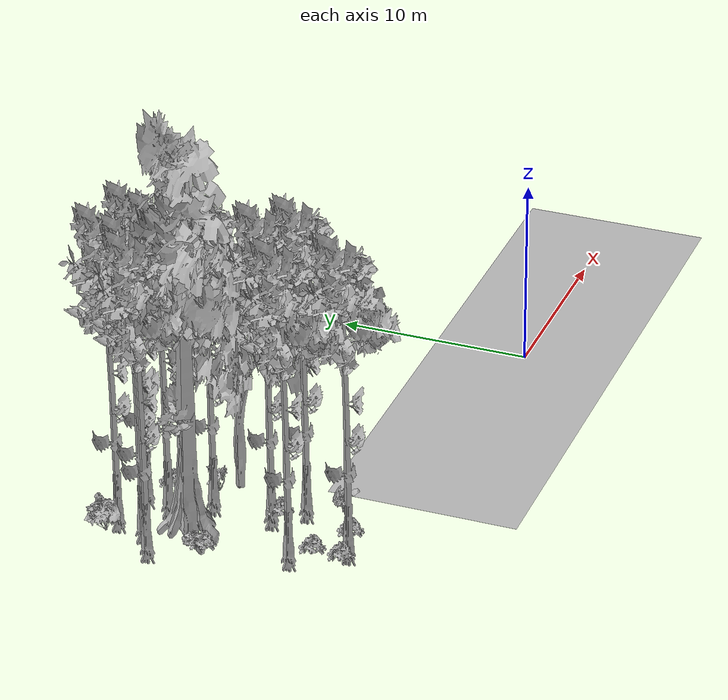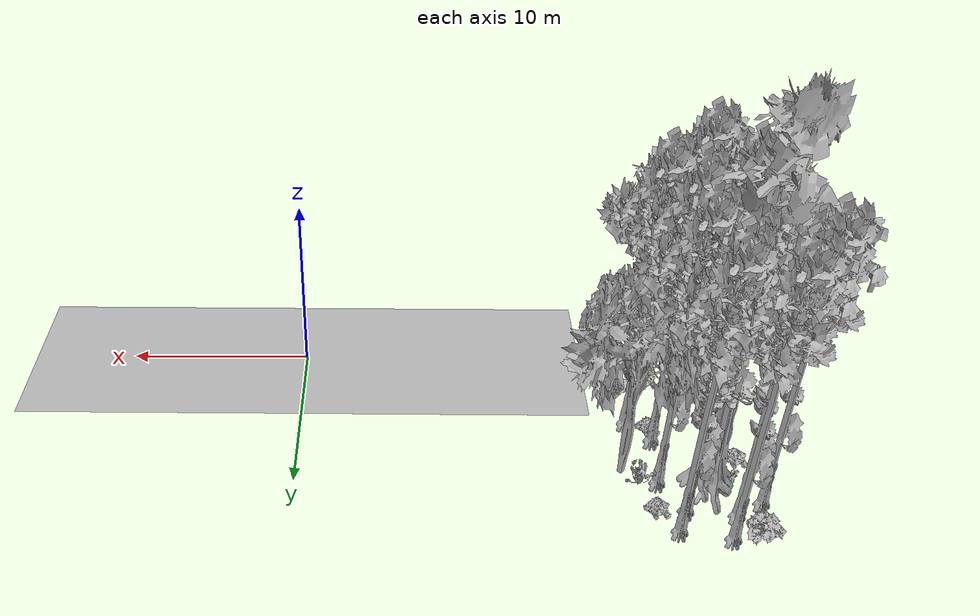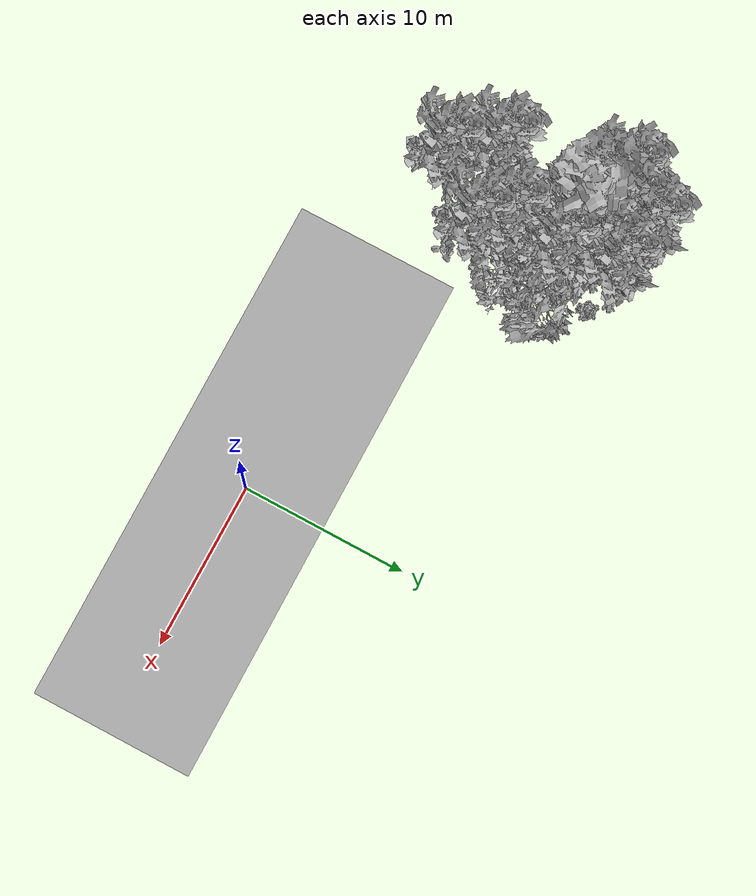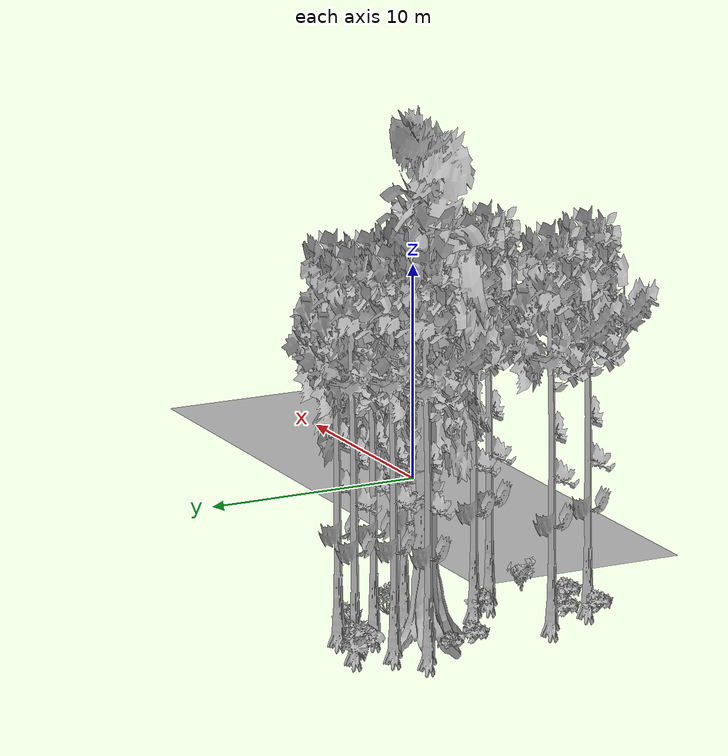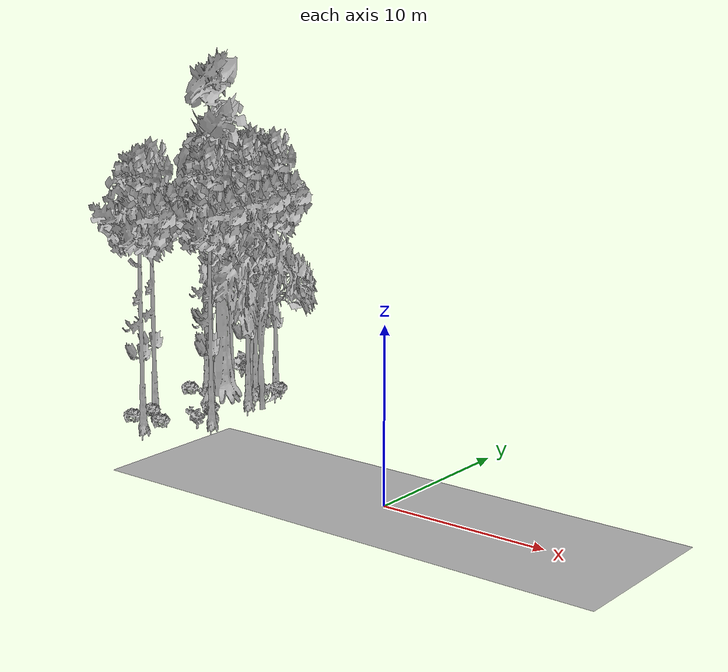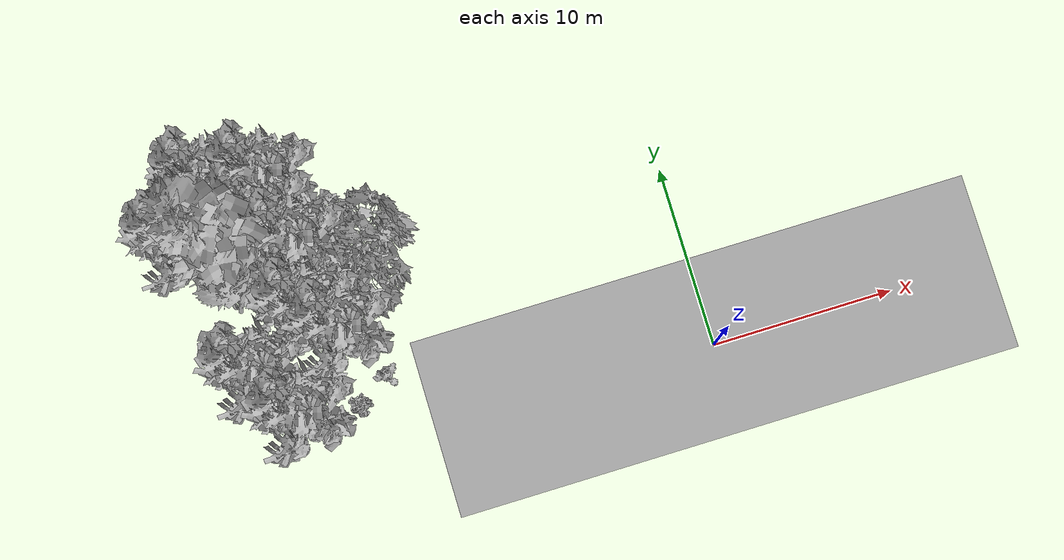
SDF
<sdf version="1.7">
 <world name="default">
  <model name="ground_plane">
   <static>1</static>
   <link name="link">
    <collision name="collision">
     <geometry><plane><normal>0 0 1</normal><size>100 100</size></plane></geometry>
     <surface><contact><ode><min_depth>0.01</min_depth><max_vel>0</max_vel></ode></contact></surface>
    </collision>
    <visual name="grass">
     <cast_shadows>0</cast_shadows>
     <geometry>
      <mesh>
       <scale>0.5814285714285714 0.18142857142857144 0.1</scale>
       <uri>file://grass_plane/meshes/grass_plane.dae</uri>
      </mesh>
     </geometry>
    </visual>
   </link>
  </model>
  <model name="Tree 6">
   <static>1</static>
   <pose>-18.774931656274358 6.652846489458025 0 1.57079 -0 0</pose>
   <link name="link">
    <collision name="collision">
     <geometry><mesh><scale>3.5 5 3.5</scale><uri>model://tree_9/meshes/tree_9.obj</uri></mesh></geometry>
    </collision>
    <visual name="visual">
     <geometry><mesh><scale>3.5 5 3.5</scale><uri>model://tree_9/meshes/tree_9.obj</uri></mesh></geometry>
    </visual>
   </link>
  </model>
  <model name="Tree 25">
   <static>1</static>
   <pose>-21.53470297433803 13.58200722620655 0 1.57079 -0 0</pose>
   <link name="link">
    <collision name="collision">
     <geometry><mesh><scale>3.5 5 3.5</scale><uri>model://tree_9/meshes/tree_9.obj</uri></mesh></geometry>
    </collision>
    <visual name="visual">
     <geometry><mesh><scale>3.5 5 3.5</scale><uri>model://tree_9/meshes/tree_9.obj</uri></mesh></geometry>
    </visual>
   </link>
  </model>
  <model name="Tree 39">
   <static>1</static>
   <pose>-16.838851974309794 9.107836967116327 0 1.57079 -0 0</pose>
   <link name="link">
    <collision name="collision">
     <geometry><mesh><scale>3.5 5 3.5</scale><uri>model://tree_2/meshes/tree_2.obj</uri></mesh></geometry>
    </collision>
    <visual name="visual">
     <geometry><mesh><scale>3.5 5 3.5</scale><uri>model://tree_2/meshes/tree_2.obj</uri></mesh></geometry>
    </visual>
   </link>
  </model>
  <model name="Tree 44">
   <static>1</static>
   <pose>-21.027879697015372 10.050995978160628 0 1.57079 -0 0</pose>
   <link name="link">
    <collision name="collision">
     <geometry><mesh><scale>3.5 5 3.5</scale><uri>model://tree_4/meshes/tree_4.obj</uri></mesh></geometry>
    </collision>
    <visual name="visual">
     <geometry><mesh><scale>3.5 5 3.5</scale><uri>model://tree_4/meshes/tree_4.obj</uri></mesh></geometry>
    </visual>
   </link>
  </model>
  <model name="Tree 47">
   <static>1</static>
   <pose>-21.771773369971676 4.564131654889394 0 1.57079 -0 0</pose>
   <link name="link">
    <collision name="collision">
     <geometry><mesh><scale>3.5 5 3.5</scale><uri>model://tree_9/meshes/tree_9.obj</uri></mesh></geometry>
    </collision>
    <visual name="visual">
     <geometry><mesh><scale>3.5 5 3.5</scale><uri>model://tree_9/meshes/tree_9.obj</uri></mesh></geometry>
    </visual>
   </link>
  </model>
  <model name="Tree 72">
   <static>1</static>
   <pose>-18.529734741231177 9.803457465723088 0 1.57079 -0 0</pose>
   <link name="link">
    <collision name="collision">
     <geometry><mesh><scale>3.5 5 3.5</scale><uri>model://tree_9/meshes/tree_9.obj</uri></mesh></geometry>
    </collision>
    <visual name="visual">
     <geometry><mesh><scale>3.5 5 3.5</scale><uri>model://tree_9/meshes/tree_9.obj</uri></mesh></geometry>
    </visual>
   </link>
  </model>
  <model name="Tree 117">
   <static>1</static>
   <pose>-19.03527523243424 13.119327400604053 0 1.57079 -0 0</pose>
   <link name="link">
    <collision name="collision">
     <geometry><mesh><scale>3.5 5 3.5</scale><uri>model://tree_9/meshes/tree_9.obj</uri></mesh></geometry>
    </collision>
    <visual name="visual">
     <geometry><mesh><scale>3.5 5 3.5</scale><uri>model://tree_9/meshes/tree_9.obj</uri></mesh></geometry>
    </visual>
   </link>
  </model>
  <model name="Tree 119">
   <static>1</static>
   <pose>-19.602421622902863 11.750395726567547 0 1.57079 -0 0</pose>
   <link name="link">
    <collision name="collision">
     <geometry><mesh><scale>3.5 5 3.5</scale><uri>model://tree_9/meshes/tree_9.obj</uri></mesh></geometry>
    </collision>
    <visual name="visual">
     <geometry><mesh><scale>3.5 5 3.5</scale><uri>model://tree_9/meshes/tree_9.obj</uri></mesh></geometry>
    </visual>
   </link>
  </model>
  <model name="Tree 185">
   <static>1</static>
   <pose>-22.06805847697255 12.050801944988372 0 1.57079 -0 0</pose>
   <link name="link">
    <collision name="collision">
     <geometry><mesh><scale>3.5 5 3.5</scale><uri>model://tree_9/meshes/tree_9.obj</uri></mesh></geometry>
    </collision>
    <visual name="visual">
     <geometry><mesh><scale>3.5 5 3.5</scale><uri>model://tree_9/meshes/tree_9.obj</uri></mesh></geometry>
    </visual>
   </link>
  </model>
  <model name="Tree 202">
   <static>1</static>
   <pose>-20.302062253504513 2.059678359770757 0 1.57079 -0 0</pose>
   <link name="link">
    <collision name="collision">
     <geometry><mesh><scale>3.5 5 3.5</scale><uri>model://tree_9/meshes/tree_9.obj</uri></mesh></geometry>
    </collision>
    <visual name="visual">
     <geometry><mesh><scale>3.5 5 3.5</scale><uri>model://tree_9/meshes/tree_9.obj</uri></mesh></geometry>
    </visual>
   </link>
  </model>
  <model name="Tree 212">
   <static>1</static>
   <pose>-17.56089090370567 5.29132138694904 0 1.57079 -0 0</pose>
   <link name="link">
    <collision name="collision">
     <geometry><mesh><scale>3.5 5 3.5</scale><uri>model://tree_9/meshes/tree_9.obj</uri></mesh></geometry>
    </collision>
    <visual name="visual">
     <geometry><mesh><scale>3.5 5 3.5</scale><uri>model://tree_9/meshes/tree_9.obj</uri></mesh></geometry>
    </visual>
   </link>
  </model>
  <model name="Tree 325">
   <static>1</static>
   <pose>-23.49036963396317 11.20136775002221 0 1.57079 -0 0</pose>
   <link name="link">
    <collision name="collision">
     <geometry><mesh><scale>3.5 5 3.5</scale><uri>model://tree_9/meshes/tree_9.obj</uri></mesh></geometry>
    </collision>
    <visual name="visual">
     <geometry><mesh><scale>3.5 5 3.5</scale><uri>model://tree_9/meshes/tree_9.obj</uri></mesh></geometry>
    </visual>
   </link>
  </model>
  <model name="Bush 1">
   <static>1</static>
   <pose>-21.17963793806789 2.1095891487693734 0 1.57079 -0 0</pose>
   <link name="link">
    <collision name="collision">
     <geometry><mesh><scale>2 2 2</scale><uri>model://bush_3/meshes/bush_3.obj</uri></mesh></geometry>
     <surface><contact><collide_without_contact>false</collide_without_contact></contact></surface>
    </collision>
    <visual name="visual">
     <geometry><mesh><scale>2 2 2</scale><uri>model://bush_3/meshes/bush_3.obj</uri></mesh></geometry>
    </visual>
   </link>
  </model>
  <model name="Bush 17">
   <static>1</static>
   <pose>-22.560959870738806 8.670442331334886 0 1.57079 -0 0</pose>
   <link name="link">
    <collision name="collision">
     <geometry><mesh><scale>2 2 2</scale><uri>model://bush_3/meshes/bush_3.obj</uri></mesh></geometry>
     <surface><contact><collide_without_contact>false</collide_without_contact></contact></surface>
    </collision>
    <visual name="visual">
     <geometry><mesh><scale>2 2 2</scale><uri>model://bush_3/meshes/bush_3.obj</uri></mesh></geometry>
    </visual>
   </link>
  </model>
  <model name="Bush 38">
   <static>1</static>
   <pose>-19.03340251200986 2.428285150789822 0 1.57079 -0 0</pose>
   <link name="link">
    <collision name="collision">
     <geometry><mesh><scale>2 2 2</scale><uri>model://bush_3/meshes/bush_3.obj</uri></mesh></geometry>
     <surface><contact><collide_without_contact>false</collide_without_contact></contact></surface>
    </collision>
    <visual name="visual">
     <geometry><mesh><scale>2 2 2</scale><uri>model://bush_3/meshes/bush_3.obj</uri></mesh></geometry>
    </visual>
   </link>
  </model>
  <model name="Bush 40">
   <static>1</static>
   <pose>-21.071478969772784 3.6143051696629556 0 1.57079 -0 0</pose>
   <link name="link">
    <collision name="collision">
     <geometry><mesh><scale>2 2 2</scale><uri>model://bush_3/meshes/bush_3.obj</uri></mesh></geometry>
     <surface><contact><collide_without_contact>false</collide_without_contact></contact></surface>
    </collision>
    <visual name="visual">
     <geometry><mesh><scale>2 2 2</scale><uri>model://bush_3/meshes/bush_3.obj</uri></mesh></geometry>
    </visual>
   </link>
  </model>
  <model name="Bush 90">
   <static>1</static>
   <pose>-22.084817769318683 9.428390145910473 0 1.57079 -0 0</pose>
   <link name="link">
    <collision name="collision">
     <geometry><mesh><scale>2 2 2</scale><uri>model://bush_2/meshes/bush_2.obj</uri></mesh></geometry>
     <surface><contact><collide_without_contact>false</collide_without_contact></contact></surface>
    </collision>
    <visual name="visual">
     <geometry><mesh><scale>2 2 2</scale><uri>model://bush_2/meshes/bush_2.obj</uri></mesh></geometry>
    </visual>
   </link>
  </model>
  <model name="Bush 103">
   <static>1</static>
   <pose>-17.499156610250036 10.024763849520323 0 1.57079 -0 0</pose>
   <link name="link">
    <collision name="collision">
     <geometry><mesh><scale>2 2 2</scale><uri>model://bush_4/meshes/bush_4.obj</uri></mesh></geometry>
     <surface><contact><collide_without_contact>false</collide_without_contact></contact></surface>
    </collision>
    <visual name="visual">
     <geometry><mesh><scale>2 2 2</scale><uri>model://bush_4/meshes/bush_4.obj</uri></mesh></geometry>
    </visual>
   </link>
  </model>
  <model name="Bush 159">
   <static>1</static>
   <pose>-17.934612068148546 12.244371800965016 0 1.57079 -0 0</pose>
   <link name="link">
    <collision name="collision">
     <geometry><mesh><scale>2 2 2</scale><uri>model://bush_3/meshes/bush_3.obj</uri></mesh></geometry>
     <surface><contact><collide_without_contact>false</collide_without_contact></contact></surface>
    </collision>
    <visual name="visual">
     <geometry><mesh><scale>2 2 2</scale><uri>model://bush_3/meshes/bush_3.obj</uri></mesh></geometry>
    </visual>
   </link>
  </model>
  <model name="Bush 169">
   <static>1</static>
   <pose>-18.478863493413463 6.297694565951332 0 1.57079 -0 0</pose>
   <link name="link">
    <collision name="collision">
     <geometry><mesh><scale>2 2 2</scale><uri>model://bush_3/meshes/bush_3.obj</uri></mesh></geometry>
     <surface><contact><collide_without_contact>false</collide_without_contact></contact></surface>
    </collision>
    <visual name="visual">
     <geometry><mesh><scale>2 2 2</scale><uri>model://bush_3/meshes/bush_3.obj</uri></mesh></geometry>
    </visual>
   </link>
  </model>
  <model name="Bush 262">
   <static>1</static>
   <pose>-17.149170858965682 3.545017141773034 0 1.57079 -0 0</pose>
   <link name="link">
    <collision name="collision">
     <geometry><mesh><scale>2 2 2</scale><uri>model://bush_0/meshes/bush_0.obj</uri></mesh></geometry>
     <surface><contact><collide_without_contact>false</collide_without_contact></contact></surface>
    </collision>
    <visual name="visual">
     <geometry><mesh><scale>2 2 2</scale><uri>model://bush_0/meshes/bush_0.obj</uri></mesh></geometry>
    </visual>
   </link>
  </model>
  <model name="Bush 289">
   <static>1</static>
   <pose>-22.682005699556264 13.718252313325863 0 1.57079 -0 0</pose>
   <link name="link">
    <collision name="collision">
     <geometry><mesh><scale>2 2 2</scale><uri>model://bush_1/meshes/bush_1.obj</uri></mesh></geometry>
     <surface><contact><collide_without_contact>false</collide_without_contact></contact></surface>
    </collision>
    <visual name="visual">
     <geometry><mesh><scale>2 2 2</scale><uri>model://bush_1/meshes/bush_1.obj</uri></mesh></geometry>
    </visual>
   </link>
  </model>
 </world>
</sdf>
